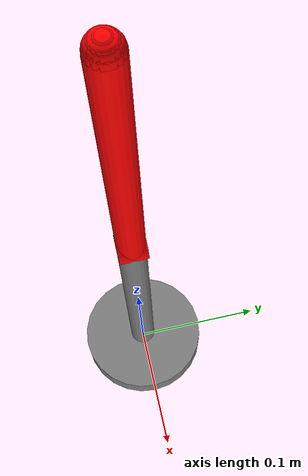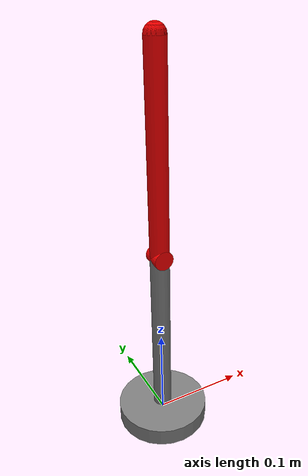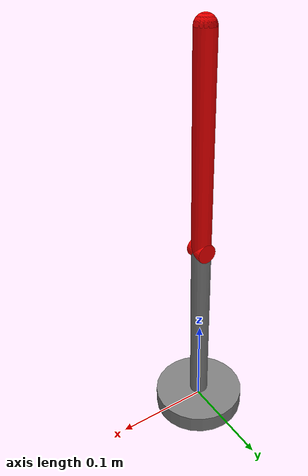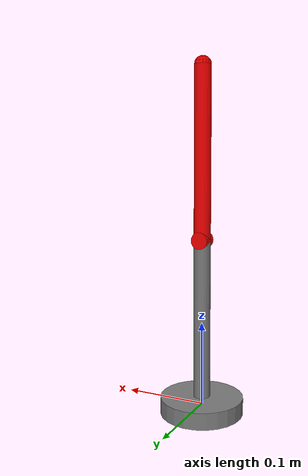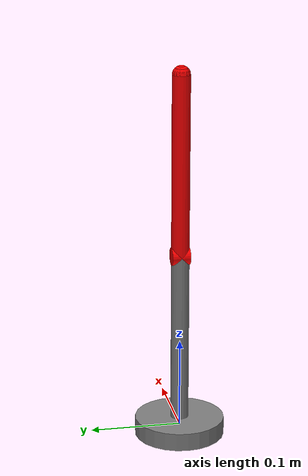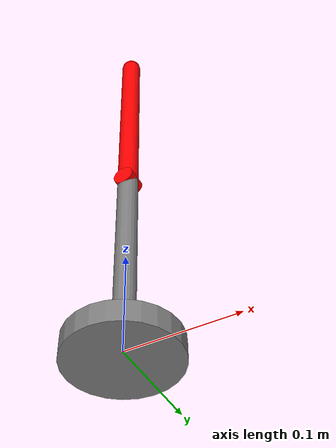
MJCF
<mujoco model="arm">
    <compiler inertiafromgeom="true"/>

    <default>
        <joint armature="0.001" damping="0.1"/>
        <geom contype="0" conaffinity="0" friction="1 0.1 0.1"/>
    </default>

    <!-- Arm Model: -->
    <worldbody>
        <geom name="base" type="cylinder" size="0.05 0.01" pos="0 0 0" quat="1 0 0 0"/>
        <body name="link_1" pos="0 0 0">
            <joint name="base_joint" type="hinge" axis="0 0 1"/>
            <joint name="link_1_joint" type="hinge" axis="0 1 0"/>
            <geom name="link_1_geom" type="capsule" size="0.01 0.1" pos="0 0 0.1" quat="1 0 0 0"/>
            <geom name="link_1_joint_geom" type="cylinder" size="0.01 0.01" pos="0 0 0.2" rgba="1 0 0 1" quat="1 1 0 0"/>
            <body name="link_2" pos="0 0 0.2">
                <joint name="link_2_joint" type="hinge" axis="0 1 0"/>
                <geom name="link_2_geom" type="capsule" size="0.01 0.1" pos="0 0 0.1" rgba="1 0 0 1" quat="1 0 0 0"/>
                <site name="end_effector" pos="0 0 0.2" size="0.01" type="sphere" rgba="1 0 0 1"/>
            </body>
        </body>
    </worldbody>

    <actuator>
        <motor name="base_motor" ctrllimited="true" ctrlrange="-3 3" joint="base_joint"/>
        <motor name="link_1_motor" ctrllimited="true" ctrlrange="-3 3" joint="link_1_joint"/>
        <motor name="link_2_motor" ctrllimited="true" ctrlrange="-3 3" joint="link_2_joint"/>
    </actuator>

</mujoco>
